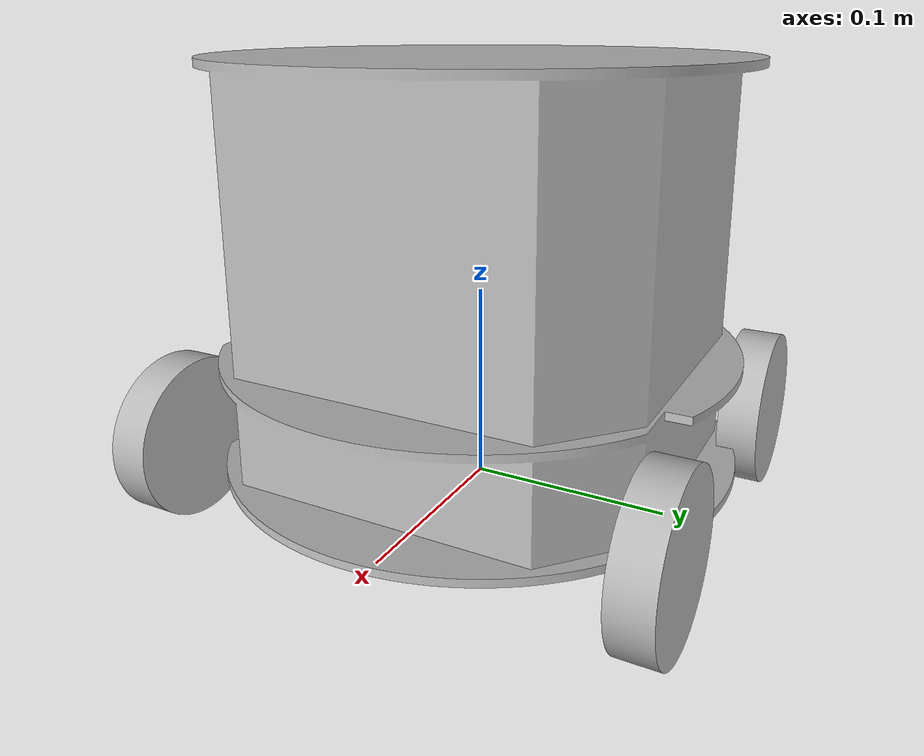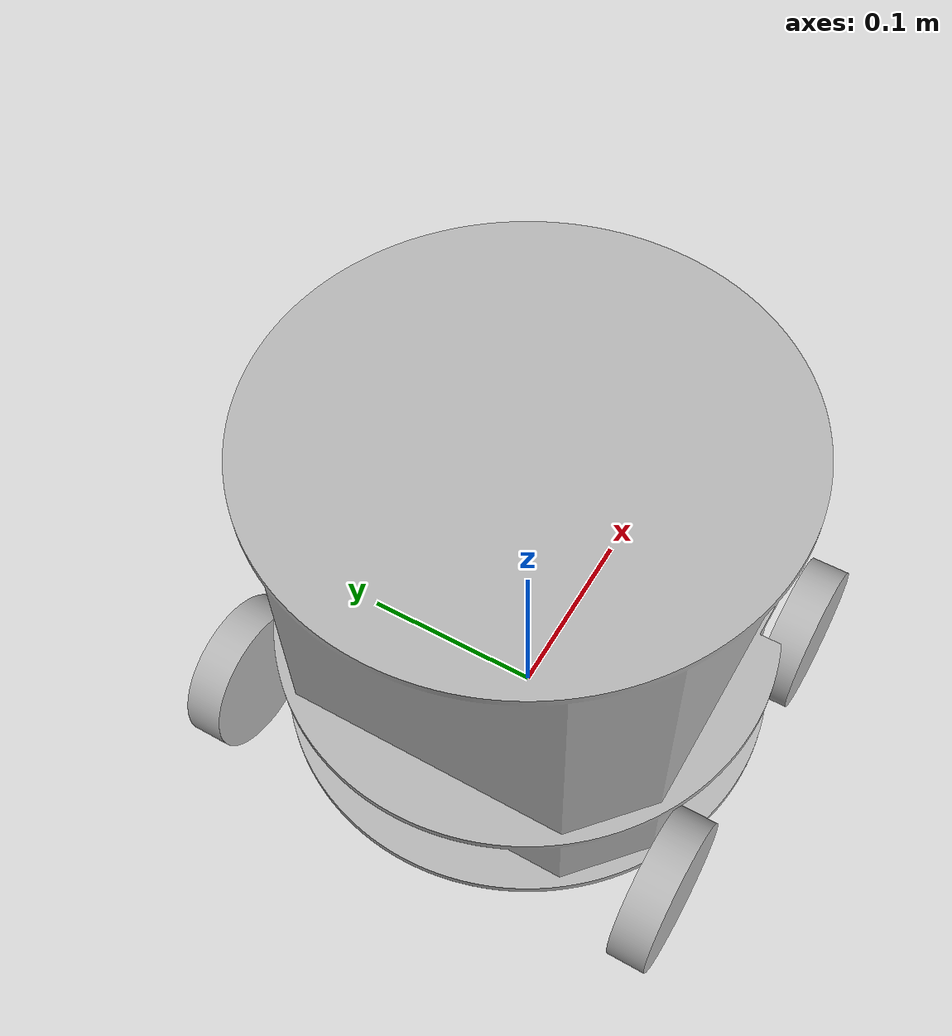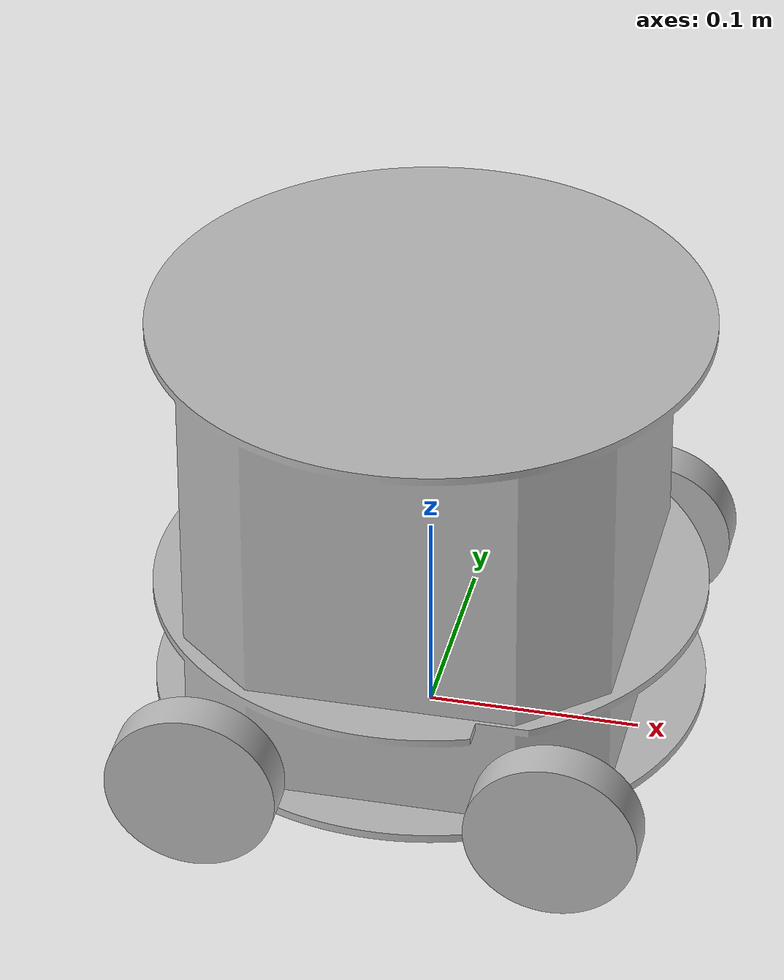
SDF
<?xml version="1.0" ?>
<sdf version="1.10">
    <model name="firebird_vi">

        <link name="base_link">
            <pose> 0.0 0.0 0.016 0 0 0 </pose>
            <visual name='visual'>
                <geometry>
                    <mesh>
                        <uri>package://robot_description/meshes/firebird_vi.obj</uri>
                    </mesh>
                </geometry>
            </visual>
            <collision name="collision">
            <pose> 0 0 0.1 0 0 0</pose>
                <geometry>
                    <cylinder>
                        <radius> 0.125 </radius>
                        <length> 0.20 </length>
                    </cylinder>
                </geometry>
            </collision>
            <inertial>
                <pose> 0 0 0.046498 0 0 0 </pose>
                <mass>10</mass>
                <inertia>
                    <ixx>1.765E-02</ixx>
                    <ixy>-2.217E-17</ixy>
                    <ixz>-2.225197E-06</ixz>
                    <iyy>1.663E-02</iyy>
                    <iyz>2.217E-17</iyz>
                    <izz>1.932E-02</izz>
                </inertia>
            </inertial>
        </link>

        <link name="front_right_wheel">
            <pose> 0.0835 -0.37975 0.03 0 0 0 </pose>
            <visual name='visual'>
                <geometry>
                    <mesh>
                        <uri>package://robot_description/meshes/firebird_wheel.obj</uri>
                    </mesh>
                </geometry>
            </visual>
            <collision name="collision">
            <pose> 0 0.255875 0 1.57 0 0</pose>
                <geometry>
                    <cylinder>
                        <radius> 0.04 </radius>
                        <length> 0.02 </length>
                    </cylinder>
                </geometry>
                <surface>
                    <friction>
                        <ode>
                            <mu>1</mu>
                            <mu2>1</mu2>
                            <slip1>0.035</slip1>
                            <slip2>0</slip2>
                            <fdir1>0 0 1</fdir1>
                        </ode>
                    </friction>
                </surface>
            </collision>
            <inertial>
                <pose> 0 0.256506 0 0 0 0 </pose>
                <mass>0.1</mass>
                    <inertia>
                    <ixx>0.000043333</ixx>
                    <ixy>0</ixy>
                    <ixz>0</ixz>
                    <iyy>0.00008</iyy>
                    <iyz>0</iyz>
                    <izz>0.000043333</izz>
                </inertia>
            </inertial>
        </link>

        <link name="front_left_wheel">
            <pose> 0.0835 -0.13325 0.03 0 0 0</pose>
            <visual name='visual'>
                <geometry>
                    <mesh>
                        <uri>package://robot_description/meshes/firebird_wheel.obj</uri>
                    </mesh>
                </geometry>
            </visual>
            <collision name="collision">
            <pose> 0 0.255875 0 1.57 0 0</pose>
                <geometry>
                    <cylinder>
                        <radius> 0.04 </radius>
                        <length> 0.02 </length>
                    </cylinder>
                </geometry>
                <surface>
                    <friction>
                    <ode>
                        <mu>1</mu>
                        <mu2>1</mu2>
                        <slip1>0.035</slip1>
                        <slip2>0</slip2>
                        <fdir1>0 0 1</fdir1>
                    </ode>
                    <bullet>
                        <friction>1</friction>
                        <friction2>1</friction2>
                        <rolling_friction>0.1</rolling_friction>
                        <spinning_friction>0.1</spinning_friction>
                    </bullet>
                    </friction>
                </surface>
            </collision>
            <inertial>
                <pose> 0 0.256506 0 0 0 0 </pose>
                <mass>0.1</mass>
                    <inertia>
                    <ixx>0.000043333</ixx>
                    <ixy>0</ixy>
                    <ixz>0</ixz>
                    <iyy>0.00008</iyy>
                    <iyz>0</iyz>
                    <izz>0.000043333</izz>
                </inertia>
            </inertial>
        </link>

        <link name="rear_right_wheel">
            <pose>-0.0835 -0.37975 0.03 0 0 0</pose>
            <visual name='visual'>
                <geometry>
                    <mesh>
                        <uri>package://robot_description/meshes/firebird_wheel.obj</uri>
                    </mesh>
                </geometry>
            </visual>
            <collision name="collision">
            <pose> 0 0.255875 0 1.57 0 0</pose>
                <geometry>
                    <cylinder>
                        <radius> 0.04 </radius>
                        <length> 0.02 </length>
                    </cylinder>
                </geometry>
                <surface>
                    <friction>
                    <ode>
                        <mu>1</mu>
                        <mu2>1</mu2>
                        <slip1>0.035</slip1>
                        <slip2>0</slip2>
                        <fdir1>0 0 1</fdir1>
                    </ode>
                    <bullet>
                        <friction>1</friction>
                        <friction2>1</friction2>
                        <rolling_friction>0.1</rolling_friction>
                        <spinning_friction>0.1</spinning_friction>
                    </bullet>
                    </friction>
                </surface>
            </collision>
            <inertial>
                <pose> 0 0.256506 0 0 0 0 </pose>
                <mass>0.1</mass>
                    <inertia>
                    <ixx>0.000043333</ixx>
                    <ixy>0</ixy>
                    <ixz>0</ixz>
                    <iyy>0.00008</iyy>
                    <iyz>0</iyz>
                    <izz>0.000043333</izz>
                </inertia>
            </inertial>
        </link>

        <link name="rear_left_wheel">
            <pose>-0.0835 -0.13325 0.03 0 0 0</pose>
            <visual name='visual'>
                <geometry>
                    <mesh>
                        <uri>package://robot_description/meshes/firebird_wheel.obj</uri>
                    </mesh>
                </geometry>
            </visual>
            <collision name="collision">
            <pose> 0 0.255875 0 1.57 0 0</pose>
                <geometry>
                    <cylinder>
                        <radius> 0.04 </radius>
                        <length> 0.02 </length>
                    </cylinder>
                </geometry>
            </collision>
            <surface>
                    <friction>
                    <ode>
                        <mu>1</mu>
                        <mu2>1</mu2>
                        <slip1>0.035</slip1>
                        <slip2>0</slip2>
                        <fdir1>0 0 1</fdir1>
                    </ode>
                    <bullet>
                        <friction>1</friction>
                        <friction2>1</friction2>
                        <rolling_friction>0.1</rolling_friction>
                        <spinning_friction>0.1</spinning_friction>
                    </bullet>
                    </friction>
                </surface>
            <inertial>
                <pose> 0 0.256506 0 0 0 0 </pose>
                <mass>0.1</mass>
                    <inertia>
                    <ixx>0.000043333</ixx>
                    <ixy>0</ixy>
                    <ixz>0</ixz>
                    <iyy>0.00008</iyy>
                    <iyz>0</iyz>
                    <izz>0.000043333</izz>
                </inertia>
            </inertial>
        </link>

        <joint name='front_left' type='revolute'>
            <pose> 0 0.256506 0 0 0 0</pose>
            <parent>base_link</parent>
            <child>front_left_wheel</child>
            <axis>
                <xyz expressed_in='__model__'>0 1 0</xyz>
                <limit>
                    <lower>-1.79769e+308</lower>    <!--negative infinity-->
                    <upper>1.79769e+308</upper>     <!--positive infinity-->
                </limit>
            </axis>
        </joint>

        <joint name='front_right' type='revolute'>
            <pose> 0 0.256506 0 0 0 0</pose>
            <parent>base_link</parent>
            <child>front_right_wheel</child>
            <axis>
                <xyz expressed_in='__model__'>0 1 0</xyz>
                <limit>
                    <lower>-1.79769e+308</lower>    <!--negative infinity-->
                    <upper>1.79769e+308</upper>     <!--positive infinity-->
                </limit>
            </axis>
        </joint>

        <joint name='rear_left' type='revolute'>
            <pose> 0 0.256506 0 0 0 0</pose>
            <parent>base_link</parent>
            <child>rear_left_wheel</child>
            <axis>
                <xyz expressed_in='__model__'>0 1 0</xyz>
                <limit>
                    <lower>-1.79769e+308</lower>    <!--negative infinity-->
                    <upper>1.79769e+308</upper>     <!--positive infinity-->
                </limit>
            </axis>
        </joint>

        <joint name='rear_right' type='revolute'>
            <pose> 0 0.256506 0 0 0 0</pose>
            <parent>base_link</parent>
            <child>rear_right_wheel</child>
            <axis>
                <xyz expressed_in='__model__'>0 1 0</xyz>
                <limit>
                    <lower>-1.79769e+308</lower>    <!--negative infinity-->
                    <upper>1.79769e+308</upper>     <!--positive infinity-->
                </limit>
            </axis>
        </joint>

        <plugin filename="gz-sim-diff-drive-system" name="gz::sim::systems::DiffDrive">
            <left_joint>rear_left</left_joint>
            <left_joint>front_left</left_joint>
            <right_joint>rear_right</right_joint>
            <right_joint>front_right</right_joint>
            <wheel_separation>0.2465</wheel_separation>
            <wheel_radius>0.04</wheel_radius>
            <odom_publish_frequency>1</odom_publish_frequency>
            <max_linear_acceleration>1</max_linear_acceleration>
            <min_linear_acceleration>-1</min_linear_acceleration>
            <max_angular_acceleration>2</max_angular_acceleration>
            <min_angular_acceleration>-2</min_angular_acceleration>
            <max_linear_velocity>0.5</max_linear_velocity>
            <min_linear_velocity>-0.5</min_linear_velocity>
            <max_angular_velocity>1</max_angular_velocity>
            <min_angular_velocity>-1</min_angular_velocity>
            <topic>cmd_vel</topic>
        </plugin>

        <plugin
            filename="gz-sim-joint-state-publisher-system"
            name="gz::sim::systems::JointStatePublisher">
        </plugin>

        <plugin
            filename="gz-sim-pose-publisher-system"
            name="gz::sim::systems::PosePublisher">
            <publish_link_pose>true</publish_link_pose>
            <use_pose_vector_msg>true</use_pose_vector_msg>
            <static_publisher>true</static_publisher>
            <static_update_frequency>1</static_update_frequency>
        </plugin>

        <plugin
            filename="gz-sim-odometry-publisher-system"
            name="gz::sim::systems::OdometryPublisher">
            <odom_frame>odom</odom_frame>
            <robot_base_frame>base_link</robot_base_frame>
        </plugin>

    </model>
</sdf>
